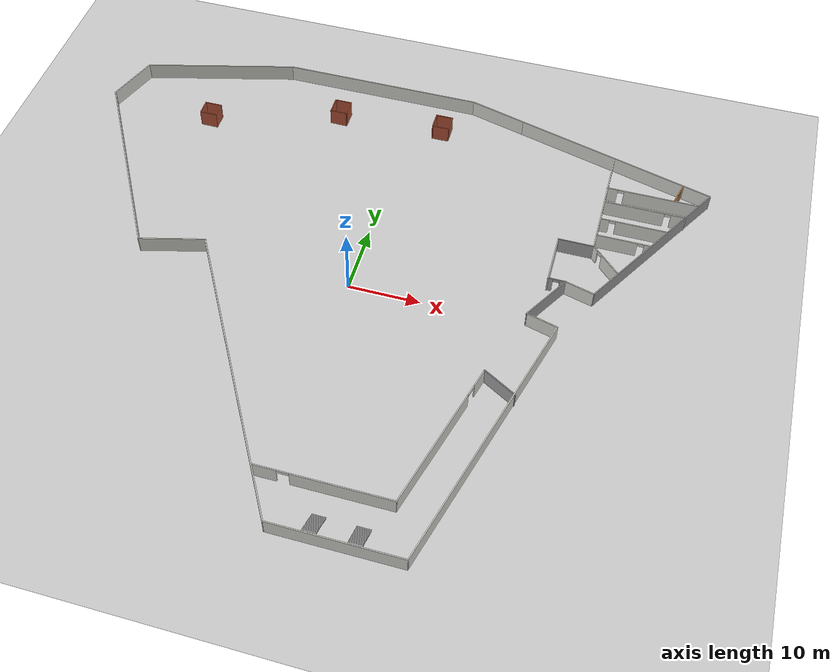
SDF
<sdf version="1.6">
 <world name="default">
  <light name="sun" type="directional">
   <pose>0 0 10 0 -0 0</pose>
   <diffuse>0.8 0.8 0.8 1</diffuse>
   <specular>0.1 0.1 0.1 1</specular>
   <attenuation>
    <range>1000</range>
    <constant>0.9</constant>
    <linear>0.01</linear>
    <quadratic>0.001</quadratic>
   </attenuation>
   <direction>-0.5 0.5 -1</direction>
  </light>
  <model name="ground_plane">
   <static>1</static>
   <link name="link">
    <collision name="collision">
     <geometry><plane><normal>0 0 1</normal><size>100 100</size></plane></geometry>
     <surface><friction><ode><mu>100</mu><mu2>50</mu2></ode></friction></surface>
    </collision>
    <visual name="visual">
     <cast_shadows>0</cast_shadows>
     <geometry><plane><normal>0 0 1</normal><size>100 100</size></plane></geometry>
     <material>
      <script><uri>file://media/materials/scripts/gazebo.material</uri><name>Gazebo/Grey</name></script>
     </material>
    </visual>
   </link>
  </model>
  <gravity>0 0 -9.8</gravity>
  <magnetic_field>6e-06 2.3e-05 -4.2e-05</magnetic_field>
  <atmosphere type="adiabatic"/>
  <physics name="default_physics" default="0" type="ode">
   <max_step_size>0.001</max_step_size>
   <real_time_factor>1</real_time_factor>
   <real_time_update_rate>1000</real_time_update_rate>
  </physics>
  <scene><ambient>0.4 0.4 0.4 1</ambient><background>0.7 0.7 0.7 1</background><shadows>1</shadows></scene>
  <spherical_coordinates>
   <surface_model>EARTH_WGS84</surface_model>
   <latitude_deg>0</latitude_deg>
   <longitude_deg>0</longitude_deg>
   <elevation>0</elevation>
   <heading_deg>0</heading_deg>
  </spherical_coordinates>
  <model name="large_arena_1">
   <pose>0.066745 0.030253 -0.017578 0 -0 0</pose>
   <link name="Stairs_0">
    <visual name="Stairs_0_Visual_0">
     <pose>6.82303 -33.7159 0.083333 0 -0 0</pose>
     <geometry><box><size>1.76476 0.233333 0.166667</size></box></geometry>
     <material>
      <script><uri>file://media/materials/scripts/gazebo.material</uri><name>Gazebo/Grey</name></script>
      <ambient>1 1 1 1</ambient>
     </material>
    </visual>
    <collision name="Stairs_0_Collision_0">
     <geometry><box><size>1.76476 0.233333 0.166667</size></box></geometry>
     <pose>6.82303 -33.7159 0.083333 0 -0 0</pose>
    </collision>
    <visual name="Stairs_0_Visual_1">
     <pose>6.82303 -33.9492 0.25 0 -0 0</pose>
     <geometry><box><size>1.76476 0.233333 0.166667</size></box></geometry>
     <material>
      <script><uri>file://media/materials/scripts/gazebo.material</uri><name>Gazebo/Grey</name></script>
      <ambient>1 1 1 1</ambient>
     </material>
    </visual>
    <collision name="Stairs_0_Collision_1">
     <geometry><box><size>1.76476 0.233333 0.166667</size></box></geometry>
     <pose>6.82303 -33.9492 0.25 0 -0 0</pose>
    </collision>
    <visual name="Stairs_0_Visual_2">
     <pose>6.82303 -34.1826 0.416667 0 -0 0</pose>
     <geometry><box><size>1.76476 0.233333 0.166667</size></box></geometry>
     <material>
      <script><uri>file://media/materials/scripts/gazebo.material</uri><name>Gazebo/Grey</name></script>
      <ambient>1 1 1 1</ambient>
     </material>
    </visual>
    <collision name="Stairs_0_Collision_2">
     <geometry><box><size>1.76476 0.233333 0.166667</size></box></geometry>
     <pose>6.82303 -34.1826 0.416667 0 -0 0</pose>
    </collision>
    <visual name="Stairs_0_Visual_3">
     <pose>6.82303 -34.4159 0.583333 0 -0 0</pose>
     <geometry><box><size>1.76476 0.233333 0.166667</size></box></geometry>
     <material>
      <script><uri>file://media/materials/scripts/gazebo.material</uri><name>Gazebo/Grey</name></script>
      <ambient>1 1 1 1</ambient>
     </material>
    </visual>
    <collision name="Stairs_0_Collision_3">
     <geometry><box><size>1.76476 0.233333 0.166667</size></box></geometry>
     <pose>6.82303 -34.4159 0.583333 0 -0 0</pose>
    </collision>
    <visual name="Stairs_0_Visual_4">
     <pose>6.82303 -34.6492 0.75 0 -0 0</pose>
     <geometry><box><size>1.76476 0.233333 0.166667</size></box></geometry>
     <material>
      <script><uri>file://media/materials/scripts/gazebo.material</uri><name>Gazebo/Grey</name></script>
      <ambient>1 1 1 1</ambient>
     </material>
    </visual>
    <collision name="Stairs_0_Collision_4">
     <geometry><box><size>1.76476 0.233333 0.166667</size></box></geometry>
     <pose>6.82303 -34.6492 0.75 0 -0 0</pose>
    </collision>
    <visual name="Stairs_0_Visual_5">
     <pose>6.82303 -34.8826 0.916667 0 -0 0</pose>
     <geometry><box><size>1.76476 0.233333 0.166667</size></box></geometry>
     <material>
      <script><uri>file://media/materials/scripts/gazebo.material</uri><name>Gazebo/Grey</name></script>
      <ambient>1 1 1 1</ambient>
     </material>
    </visual>
    <collision name="Stairs_0_Collision_5">
     <geometry><box><size>1.76476 0.233333 0.166667</size></box></geometry>
     <pose>6.82303 -34.8826 0.916667 0 -0 0</pose>
    </collision>
    <visual name="Stairs_0_Visual_6">
     <pose>6.82303 -35.1159 1.08333 0 -0 0</pose>
     <geometry><box><size>1.76476 0.233333 0.166667</size></box></geometry>
     <material>
      <script><uri>file://media/materials/scripts/gazebo.material</uri><name>Gazebo/Grey</name></script>
      <ambient>1 1 1 1</ambient>
     </material>
    </visual>
    <collision name="Stairs_0_Collision_6">
     <geometry><box><size>1.76476 0.233333 0.166667</size></box></geometry>
     <pose>6.82303 -35.1159 1.08333 0 -0 0</pose>
    </collision>
    <visual name="Stairs_0_Visual_7">
     <pose>6.82303 -35.3492 1.25 0 -0 0</pose>
     <geometry><box><size>1.76476 0.233333 0.166667</size></box></geometry>
     <material>
      <script><uri>file://media/materials/scripts/gazebo.material</uri><name>Gazebo/Grey</name></script>
      <ambient>1 1 1 1</ambient>
     </material>
    </visual>
    <collision name="Stairs_0_Collision_7">
     <geometry><box><size>1.76476 0.233333 0.166667</size></box></geometry>
     <pose>6.82303 -35.3492 1.25 0 -0 0</pose>
    </collision>
    <visual name="Stairs_0_Visual_8">
     <pose>6.82303 -35.5826 1.41667 0 -0 0</pose>
     <geometry><box><size>1.76476 0.233333 0.166667</size></box></geometry>
     <material>
      <script><uri>file://media/materials/scripts/gazebo.material</uri><name>Gazebo/Grey</name></script>
      <ambient>1 1 1 1</ambient>
     </material>
    </visual>
    <collision name="Stairs_0_Collision_8">
     <geometry><box><size>1.76476 0.233333 0.166667</size></box></geometry>
     <pose>6.82303 -35.5826 1.41667 0 -0 0</pose>
    </collision>
    <visual name="Stairs_0_Visual_9">
     <pose>6.82303 -35.8159 1.58333 0 -0 0</pose>
     <geometry><box><size>1.76476 0.233333 0.166667</size></box></geometry>
     <material>
      <script><uri>file://media/materials/scripts/gazebo.material</uri><name>Gazebo/Grey</name></script>
      <ambient>1 1 1 1</ambient>
     </material>
    </visual>
    <collision name="Stairs_0_Collision_9">
     <geometry><box><size>1.76476 0.233333 0.166667</size></box></geometry>
     <pose>6.82303 -35.8159 1.58333 0 -0 0</pose>
    </collision>
    <visual name="Stairs_0_Visual_10">
     <pose>6.82303 -36.0492 1.75 0 -0 0</pose>
     <geometry><box><size>1.76476 0.233333 0.166667</size></box></geometry>
     <material>
      <script><uri>file://media/materials/scripts/gazebo.material</uri><name>Gazebo/Grey</name></script>
      <ambient>1 1 1 1</ambient>
     </material>
    </visual>
    <collision name="Stairs_0_Collision_10">
     <geometry><box><size>1.76476 0.233333 0.166667</size></box></geometry>
     <pose>6.82303 -36.0492 1.75 0 -0 0</pose>
    </collision>
    <visual name="Stairs_0_Visual_11">
     <pose>6.82303 -36.2826 1.91667 0 -0 0</pose>
     <geometry><box><size>1.76476 0.233333 0.166667</size></box></geometry>
     <material>
      <script><uri>file://media/materials/scripts/gazebo.material</uri><name>Gazebo/Grey</name></script>
      <ambient>1 1 1 1</ambient>
     </material>
    </visual>
    <collision name="Stairs_0_Collision_11">
     <geometry><box><size>1.76476 0.233333 0.166667</size></box></geometry>
     <pose>6.82303 -36.2826 1.91667 0 -0 0</pose>
    </collision>
    <visual name="Stairs_0_Visual_12">
     <pose>6.82303 -36.5159 2.08333 0 -0 0</pose>
     <geometry><box><size>1.76476 0.233333 0.166667</size></box></geometry>
     <material>
      <script><uri>file://media/materials/scripts/gazebo.material</uri><name>Gazebo/Grey</name></script>
      <ambient>1 1 1 1</ambient>
     </material>
    </visual>
    <collision name="Stairs_0_Collision_12">
     <geometry><box><size>1.76476 0.233333 0.166667</size></box></geometry>
     <pose>6.82303 -36.5159 2.08333 0 -0 0</pose>
    </collision>
    <visual name="Stairs_0_Visual_13">
     <pose>6.82303 -36.7492 2.25 0 -0 0</pose>
     <geometry><box><size>1.76476 0.233333 0.166667</size></box></geometry>
     <material>
      <script><uri>file://media/materials/scripts/gazebo.material</uri><name>Gazebo/Grey</name></script>
      <ambient>1 1 1 1</ambient>
     </material>
    </visual>
    <collision name="Stairs_0_Collision_13">
     <geometry><box><size>1.76476 0.233333 0.166667</size></box></geometry>
     <pose>6.82303 -36.7492 2.25 0 -0 0</pose>
    </collision>
    <visual name="Stairs_0_Visual_14">
     <pose>6.82303 -36.9826 2.41667 0 -0 0</pose>
     <geometry><box><size>1.76476 0.233333 0.166667</size></box></geometry>
     <material>
      <script><uri>file://media/materials/scripts/gazebo.material</uri><name>Gazebo/Grey</name></script>
      <ambient>1 1 1 1</ambient>
     </material>
    </visual>
    <collision name="Stairs_0_Collision_14">
     <geometry><box><size>1.76476 0.233333 0.166667</size></box></geometry>
     <pose>6.82303 -36.9826 2.41667 0 -0 0</pose>
    </collision>
   </link>
   <link name="Stairs_4">
    <visual name="Stairs_4_Visual_0">
     <pose>12.3041 -33.7583 0.083333 0 -0 0</pose>
     <geometry><box><size>1.79535 0.233333 0.166667</size></box></geometry>
     <material>
      <script><uri>file://media/materials/scripts/gazebo.material</uri><name>Gazebo/Grey</name></script>
      <ambient>1 1 1 1</ambient>
     </material>
    </visual>
    <collision name="Stairs_4_Collision_0">
     <geometry><box><size>1.79535 0.233333 0.166667</size></box></geometry>
     <pose>12.3041 -33.7583 0.083333 0 -0 0</pose>
    </collision>
    <visual name="Stairs_4_Visual_1">
     <pose>12.3041 -33.9916 0.25 0 -0 0</pose>
     <geometry><box><size>1.79535 0.233333 0.166667</size></box></geometry>
     <material>
      <script><uri>file://media/materials/scripts/gazebo.material</uri><name>Gazebo/Grey</name></script>
      <ambient>1 1 1 1</ambient>
     </material>
    </visual>
    <collision name="Stairs_4_Collision_1">
     <geometry><box><size>1.79535 0.233333 0.166667</size></box></geometry>
     <pose>12.3041 -33.9916 0.25 0 -0 0</pose>
    </collision>
    <visual name="Stairs_4_Visual_2">
     <pose>12.3041 -34.225 0.416667 0 -0 0</pose>
     <geometry><box><size>1.79535 0.233333 0.166667</size></box></geometry>
     <material>
      <script><uri>file://media/materials/scripts/gazebo.material</uri><name>Gazebo/Grey</name></script>
      <ambient>1 1 1 1</ambient>
     </material>
    </visual>
    <collision name="Stairs_4_Collision_2">
     <geometry><box><size>1.79535 0.233333 0.166667</size></box></geometry>
     <pose>12.3041 -34.225 0.416667 0 -0 0</pose>
    </collision>
    <visual name="Stairs_4_Visual_3">
     <pose>12.3041 -34.4583 0.583333 0 -0 0</pose>
     <geometry><box><size>1.79535 0.233333 0.166667</size></box></geometry>
     <material>
      <script><uri>file://media/materials/scripts/gazebo.material</uri><name>Gazebo/Grey</name></script>
      <ambient>1 1 1 1</ambient>
     </material>
    </visual>
    <collision name="Stairs_4_Collision_3">
     <geometry><box><size>1.79535 0.233333 0.166667</size></box></geometry>
     <pose>12.3041 -34.4583 0.583333 0 -0 0</pose>
    </collision>
    <visual name="Stairs_4_Visual_4">
     <pose>12.3041 -34.6916 0.75 0 -0 0</pose>
     <geometry><box><size>1.79535 0.233333 0.166667</size></box></geometry>
     <material>
      <script><uri>file://media/materials/scripts/gazebo.material</uri><name>Gazebo/Grey</name></script>
      <ambient>1 1 1 1</ambient>
     </material>
    </visual>
    <collision name="Stairs_4_Collision_4">
     <geometry><box><size>1.79535 0.233333 0.166667</size></box></geometry>
     <pose>12.3041 -34.6916 0.75 0 -0 0</pose>
    </collision>
    <visual name="Stairs_4_Visual_5">
     <pose>12.3041 -34.925 0.916667 0 -0 0</pose>
     <geometry><box><size>1.79535 0.233333 0.166667</size></box></geometry>
     <material>
      <script><uri>file://media/materials/scripts/gazebo.material</uri><name>Gazebo/Grey</name></script>
      <ambient>1 1 1 1</ambient>
     </material>
    </visual>
    <collision name="Stairs_4_Collision_5">
     <geometry><box><size>1.79535 0.233333 0.166667</size></box></geometry>
     <pose>12.3041 -34.925 0.916667 0 -0 0</pose>
    </collision>
    <visual name="Stairs_4_Visual_6">
     <pose>12.3041 -35.1583 1.08333 0 -0 0</pose>
     <geometry><box><size>1.79535 0.233333 0.166667</size></box></geometry>
     <material>
      <script><uri>file://media/materials/scripts/gazebo.material</uri><name>Gazebo/Grey</name></script>
      <ambient>1 1 1 1</ambient>
     </material>
    </visual>
    <collision name="Stairs_4_Collision_6">
     <geometry><box><size>1.79535 0.233333 0.166667</size></box></geometry>
     <pose>12.3041 -35.1583 1.08333 0 -0 0</pose>
    </collision>
    <visual name="Stairs_4_Visual_7">
     <pose>12.3041 -35.3916 1.25 0 -0 0</pose>
     <geometry><box><size>1.79535 0.233333 0.166667</size></box></geometry>
     <material>
      <script><uri>file://media/materials/scripts/gazebo.material</uri><name>Gazebo/Grey</name></script>
      <ambient>1 1 1 1</ambient>
     </material>
    </visual>
    <collision name="Stairs_4_Collision_7">
     <geometry><box><size>1.79535 0.233333 0.166667</size></box></geometry>
     <pose>12.3041 -35.3916 1.25 0 -0 0</pose>
    </collision>
    <visual name="Stairs_4_Visual_8">
     <pose>12.3041 -35.625 1.41667 0 -0 0</pose>
     <geometry><box><size>1.79535 0.233333 0.166667</size></box></geometry>
     <material>
      <script><uri>file://media/materials/scripts/gazebo.material</uri><name>Gazebo/Grey</name></script>
      <ambient>1 1 1 1</ambient>
     </material>
    </visual>
    <collision name="Stairs_4_Collision_8">
     <geometry><box><size>1.79535 0.233333 0.166667</size></box></geometry>
     <pose>12.3041 -35.625 1.41667 0 -0 0</pose>
    </collision>
    <visual name="Stairs_4_Visual_9">
     <pose>12.3041 -35.8583 1.58333 0 -0 0</pose>
     <geometry><box><size>1.79535 0.233333 0.166667</size></box></geometry>
     <material>
      <script><uri>file://media/materials/scripts/gazebo.material</uri><name>Gazebo/Grey</name></script>
      <ambient>1 1 1 1</ambient>
     </material>
    </visual>
    <collision name="Stairs_4_Collision_9">
     <geometry><box><size>1.79535 0.233333 0.166667</size></box></geometry>
     <pose>12.3041 -35.8583 1.58333 0 -0 0</pose>
    </collision>
    <visual name="Stairs_4_Visual_10">
     <pose>12.3041 -36.0916 1.75 0 -0 0</pose>
     <geometry><box><size>1.79535 0.233333 0.166667</size></box></geometry>
     <material>
      <script><uri>file://media/materials/scripts/gazebo.material</uri><name>Gazebo/Grey</name></script>
      <ambient>1 1 1 1</ambient>
     </material>
    </visual>
    <collision name="Stairs_4_Collision_10">
     <geometry><box><size>1.79535 0.233333 0.166667</size></box></geometry>
     <pose>12.3041 -36.0916 1.75 0 -0 0</pose>
    </collision>
    <visual name="Stairs_4_Visual_11">
     <pose>12.3041 -36.325 1.91667 0 -0 0</pose>
     <geometry><box><size>1.79535 0.233333 0.166667</size></box></geometry>
     <material>
      <script><uri>file://media/materials/scripts/gazebo.material</uri><name>Gazebo/Grey</name></script>
      <ambient>1 1 1 1</ambient>
     </material>
    </visual>
    <collision name="Stairs_4_Collision_11">
     <geometry><box><size>1.79535 0.233333 0.166667</size></box></geometry>
     <pose>12.3041 -36.325 1.91667 0 -0 0</pose>
    </collision>
    <visual name="Stairs_4_Visual_12">
     <pose>12.3041 -36.5583 2.08333 0 -0 0</pose>
     <geometry><box><size>1.79535 0.233333 0.166667</size></box></geometry>
     <material>
      <script><uri>file://media/materials/scripts/gazebo.material</uri><name>Gazebo/Grey</name></script>
      <ambient>1 1 1 1</ambient>
     </material>
    </visual>
    <collision name="Stairs_4_Collision_12">
     <geometry><box><size>1.79535 0.233333 0.166667</size></box></geometry>
     <pose>12.3041 -36.5583 2.08333 0 -0 0</pose>
    </collision>
    <visual name="Stairs_4_Visual_13">
     <pose>12.3041 -36.7916 2.25 0 -0 0</pose>
     <geometry><box><size>1.79535 0.233333 0.166667</size></box></geometry>
     <material>
      <script><uri>file://media/materials/scripts/gazebo.material</uri><name>Gazebo/Grey</name></script>
      <ambient>1 1 1 1</ambient>
     </material>
    </visual>
    <collision name="Stairs_4_Collision_13">
     <geometry><box><size>1.79535 0.233333 0.166667</size></box></geometry>
     <pose>12.3041 -36.7916 2.25 0 -0 0</pose>
    </collision>
    <visual name="Stairs_4_Visual_14">
     <pose>12.3041 -37.025 2.41667 0 -0 0</pose>
     <geometry><box><size>1.79535 0.233333 0.166667</size></box></geometry>
     <material>
      <script><uri>file://media/materials/scripts/gazebo.material</uri><name>Gazebo/Grey</name></script>
      <ambient>1 1 1 1</ambient>
     </material>
    </visual>
    <collision name="Stairs_4_Collision_14">
     <geometry><box><size>1.79535 0.233333 0.166667</size></box></geometry>
     <pose>12.3041 -37.025 2.41667 0 -0 0</pose>
    </collision>
   </link>
   <link name="Wall_1">
    <collision name="Wall_1_Collision">
     <geometry><box><size>22.25 0.15 2.5</size></box></geometry>
     <pose>0 0 1.25 0 -0 0</pose>
    </collision>
    <visual name="Wall_1_Visual">
     <pose>0 0 1.25 0 -0 0</pose>
     <geometry><box><size>22.25 0.15 2.5</size></box></geometry>
     <material>
      <script><uri>file://media/materials/scripts/gazebo.material</uri><name>Gazebo/CeilingTiled</name></script>
      <ambient>1 1 1 1</ambient>
     </material>
    </visual>
    <pose>-31.1574 34.343 0 0 -0 0.261799</pose>
   </link>
   <link name="Wall_10">
    <collision name="Wall_10_Collision">
     <geometry><box><size>17.25 0.15 2.5</size></box></geometry>
     <pose>0 0 1.25 0 -0 0</pose>
    </collision>
    <visual name="Wall_10_Visual">
     <pose>0 0 1.25 0 -0 0</pose>
     <geometry><box><size>17.25 0.15 2.5</size></box></geometry>
     <material>
      <script><uri>file://media/materials/scripts/gazebo.material</uri><name>Gazebo/CeilingTiled</name></script>
      <ambient>1 1 1 1</ambient>
     </material>
    </visual>
    <pose>9.89991 -37.1924 0 0 -0 3.14159</pose>
   </link>
   <link name="Wall_11">
    <collision name="Wall_11_Collision">
     <geometry><box><size>43.75 0.15 2.5</size></box></geometry>
     <pose>0 0 1.25 0 -0 0</pose>
    </collision>
    <visual name="Wall_11_Visual">
     <pose>0 0 1.25 0 -0 0</pose>
     <geometry><box><size>43.75 0.15 2.5</size></box></geometry>
     <material>
      <script><uri>file://media/materials/scripts/gazebo.material</uri><name>Gazebo/CeilingTiled</name></script>
      <ambient>1 1 1 1</ambient>
     </material>
    </visual>
    <pose>-9.5501 -18.313 0 0 -0 2.0944</pose>
   </link>
   <link name="Wall_12">
    <collision name="Wall_12_Collision">
     <geometry><box><size>9.25 0.15 2.5</size></box></geometry>
     <pose>0 0 1.25 0 -0 0</pose>
    </collision>
    <visual name="Wall_12_Visual">
     <pose>0 0 1.25 0 -0 0</pose>
     <geometry><box><size>9.25 0.15 2.5</size></box></geometry>
     <material>
      <script><uri>file://media/materials/scripts/gazebo.material</uri><name>Gazebo/CeilingTiled</name></script>
      <ambient>1 1 1 1</ambient>
     </material>
    </visual>
    <pose>-24.8451 -0.611279 0 0 0 -2.87979</pose>
   </link>
   <link name="Wall_13">
    <collision name="Wall_13_Collision">
     <geometry><box><size>30.25 0.15 2.5</size></box></geometry>
     <pose>0 0 1.25 0 -0 0</pose>
    </collision>
    <visual name="Wall_13_Visual">
     <pose>0 0 1.25 0 -0 0</pose>
     <geometry><box><size>30.25 0.15 2.5</size></box></geometry>
     <material>
      <script><uri>file://media/materials/scripts/gazebo.material</uri><name>Gazebo/CeilingTiled</name></script>
      <ambient>1 1 1 1</ambient>
     </material>
    </visual>
    <pose>-36.765 11.2448 0 0 -0 2.0944</pose>
   </link>
   <link name="Wall_14">
    <collision name="Wall_14_Collision">
     <geometry><box><size>7.76273 0.15 2.5</size></box></geometry>
     <pose>0 0 1.25 0 -0 0</pose>
    </collision>
    <visual name="Wall_14_Visual">
     <pose>0 0 1.25 0 -0 0</pose>
     <geometry><box><size>7.76273 0.15 2.5</size></box></geometry>
     <material>
      <script><uri>file://media/materials/scripts/gazebo.material</uri><name>Gazebo/CeilingTiled</name></script>
      <ambient>1 1 1 1</ambient>
     </material>
    </visual>
    <pose>-43.0604 27.8808 0 0 -0 1.24186</pose>
   </link>
   <link name="Wall_19">
    <collision name="Wall_19_Collision">
     <geometry><box><size>5.25 0.15 2.5</size></box></geometry>
     <pose>0 0 1.25 0 -0 0</pose>
    </collision>
    <visual name="Wall_19_Visual">
     <pose>0 0 1.25 0 -0 0</pose>
     <geometry><box><size>5.25 0.15 2.5</size></box></geometry>
     <material>
      <script><uri>file://media/materials/scripts/gazebo.material</uri><name>Gazebo/Grey</name></script>
      <ambient>1 1 1 1</ambient>
     </material>
    </visual>
    <pose>22.9823 -11.206 0 0 -0 2.61799</pose>
   </link>
   <link name="Wall_2">
    <collision name="Wall_2_Collision">
     <geometry><box><size>28.75 0.15 2.5</size></box></geometry>
     <pose>0 0 1.25 0 -0 0</pose>
    </collision>
    <visual name="Wall_2_Visual">
     <pose>0 0 1.25 0 -0 0</pose>
     <geometry><box><size>28.75 0.15 2.5</size></box></geometry>
     <material>
      <script><uri>file://media/materials/scripts/gazebo.material</uri><name>Gazebo/CeilingTiled</name></script>
      <ambient>1 1 1 1</ambient>
     </material>
    </visual>
    <pose>-6.1839 37.203 0 0 -0 0</pose>
   </link>
   <link name="Wall_20">
    <pose>18.011 -20.2422 0 0 0 -1.8326</pose>
    <visual name="Wall_20_Visual_0">
     <pose>-9.35585 0 1.25 0 -0 0</pose>
     <geometry><box><size>2.78829 0.15 2.5</size></box></geometry>
     <material>
      <script><uri>file://media/materials/scripts/gazebo.material</uri><name>Gazebo/CeilingTiled</name></script>
      <ambient>1 1 1 1</ambient>
     </material>
    </visual>
    <collision name="Wall_20_Collision_0">
     <geometry><box><size>2.78829 0.15 2.5</size></box></geometry>
     <pose>-9.35585 0 1.25 0 -0 0</pose>
    </collision>
    <visual name="Wall_20_Visual_1">
     <pose>2.1828 0 1.25 0 -0 0</pose>
     <geometry><box><size>17.1344 0.15 2.5</size></box></geometry>
     <material>
      <script><uri>file://media/materials/scripts/gazebo.material</uri><name>Gazebo/CeilingTiled</name></script>
      <ambient>1 1 1 1</ambient>
     </material>
    </visual>
    <collision name="Wall_20_Collision_1">
     <geometry><box><size>17.1344 0.15 2.5</size></box></geometry>
     <pose>2.1828 0 1.25 0 -0 0</pose>
    </collision>
    <visual name="Wall_20_Visual_2">
     <pose>-7.17306 0 2.25 0 -0 0</pose>
     <geometry><box><size>1.5773 0.15 0.5</size></box></geometry>
     <material>
      <script><uri>file://media/materials/scripts/gazebo.material</uri><name>Gazebo/CeilingTiled</name></script>
      <ambient>1 1 1 1</ambient>
     </material>
    </visual>
    <collision name="Wall_20_Collision_2">
     <geometry><box><size>1.5773 0.15 0.5</size></box></geometry>
     <pose>-7.17306 0 2.25 0 -0 0</pose>
    </collision>
   </link>
   <link name="Wall_21">
    <pose>6.44812 -30.5535 0 0 -0 3.14159</pose>
    <visual name="Wall_21_Visual_0">
     <pose>-2.31909 0 1.25 0 -0 0</pose>
     <geometry><box><size>13.1118 0.15 2.5</size></box></geometry>
     <material>
      <script><uri>file://media/materials/scripts/gazebo.material</uri><name>Gazebo/CeilingTiled</name></script>
      <ambient>1 1 1 1</ambient>
     </material>
    </visual>
    <collision name="Wall_21_Collision_0">
     <geometry><box><size>13.1118 0.15 2.5</size></box></geometry>
     <pose>-2.31909 0 1.25 0 -0 0</pose>
    </collision>
    <visual name="Wall_21_Visual_1">
     <pose>7.33842 0 1.25 0 -0 0</pose>
     <geometry><box><size>3.07317 0.15 2.5</size></box></geometry>
     <material>
      <script><uri>file://media/materials/scripts/gazebo.material</uri><name>Gazebo/CeilingTiled</name></script>
      <ambient>1 1 1 1</ambient>
     </material>
    </visual>
    <collision name="Wall_21_Collision_1">
     <geometry><box><size>3.07317 0.15 2.5</size></box></geometry>
     <pose>7.33842 0 1.25 0 -0 0</pose>
    </collision>
    <visual name="Wall_21_Visual_2">
     <pose>5.01933 0 2.25 0 -0 0</pose>
     <geometry><box><size>1.565 0.15 0.5</size></box></geometry>
     <material>
      <script><uri>file://media/materials/scripts/gazebo.material</uri><name>Gazebo/CeilingTiled</name></script>
      <ambient>1 1 1 1</ambient>
     </material>
    </visual>
    <collision name="Wall_21_Collision_2">
     <geometry><box><size>1.565 0.15 0.5</size></box></geometry>
     <pose>5.01933 0 2.25 0 -0 0</pose>
    </collision>
   </link>
   <link name="Wall_23">
    <pose>26.6047 6.83411 0 0 -0 3.14159</pose>
    <visual name="Wall_23_Visual_0">
     <pose>-0.81386 0 1.25 0 -0 0</pose>
     <geometry><box><size>0.872281 0.15 2.5</size></box></geometry>
     <material>
      <script><uri>file://media/materials/scripts/gazebo.material</uri><name>Gazebo/Grey</name></script>
      <ambient>1 1 1 1</ambient>
     </material>
    </visual>
    <collision name="Wall_23_Collision_0">
     <geometry><box><size>0.872281 0.15 2.5</size></box></geometry>
     <pose>-0.81386 0 1.25 0 -0 0</pose>
    </collision>
    <visual name="Wall_23_Visual_1">
     <pose>0.88614 0 1.25 0 -0 0</pose>
     <geometry><box><size>0.727719 0.15 2.5</size></box></geometry>
     <material>
      <script><uri>file://media/materials/scripts/gazebo.material</uri><name>Gazebo/Grey</name></script>
      <ambient>1 1 1 1</ambient>
     </material>
    </visual>
    <collision name="Wall_23_Collision_1">
     <geometry><box><size>0.727719 0.15 2.5</size></box></geometry>
     <pose>0.88614 0 1.25 0 -0 0</pose>
    </collision>
    <visual name="Wall_23_Visual_2">
     <pose>0.072281 0 2.25 0 -0 0</pose>
     <geometry><box><size>0.9 0.15 0.5</size></box></geometry>
     <material>
      <script><uri>file://media/materials/scripts/gazebo.material</uri><name>Gazebo/Grey</name></script>
      <ambient>1 1 1 1</ambient>
     </material>
    </visual>
    <collision name="Wall_23_Collision_2">
     <geometry><box><size>0.9 0.15 0.5</size></box></geometry>
     <pose>0.072281 0 2.25 0 -0 0</pose>
    </collision>
   </link>
   <link name="Wall_24">
    <collision name="Wall_24_Collision">
     <geometry><box><size>7.25 0.15 2.5</size></box></geometry>
     <pose>0 0 1.25 0 -0 0</pose>
    </collision>
    <visual name="Wall_24_Visual">
     <pose>0 0 1.25 0 -0 0</pose>
     <geometry><box><size>7.25 0.15 2.5</size></box></geometry>
     <material>
      <script><uri>file://media/materials/scripts/gazebo.material</uri><name>Gazebo/CeilingTiled</name></script>
      <ambient>1 1 1 1</ambient>
     </material>
    </visual>
    <pose>25.4297 10.3841 0 0 -0 1.5708</pose>
   </link>
   <link name="Wall_25">
    <collision name="Wall_25_Collision">
     <geometry><box><size>5 0.15 2.5</size></box></geometry>
     <pose>0 0 1.25 0 -0 0</pose>
    </collision>
    <visual name="Wall_25_Visual">
     <pose>0 0 1.25 0 -0 0</pose>
     <geometry><box><size>5 0.15 2.5</size></box></geometry>
     <material>
      <script><uri>file://media/materials/scripts/gazebo.material</uri><name>Gazebo/Grey</name></script>
      <ambient>1 1 1 1</ambient>
     </material>
    </visual>
    <pose>27.8547 13.9341 0 0 -0 0</pose>
   </link>
   <link name="Wall_26">
    <collision name="Wall_26_Collision">
     <geometry><box><size>17.5 0.15 2.5</size></box></geometry>
     <pose>0 0 1.25 0 -0 0</pose>
    </collision>
    <visual name="Wall_26_Visual">
     <pose>0 0 1.25 0 -0 0</pose>
     <geometry><box><size>17.5 0.15 2.5</size></box></geometry>
     <material>
      <script><uri>file://media/materials/scripts/gazebo.material</uri><name>Gazebo/CeilingTiled</name></script>
      <ambient>1 1 1 1</ambient>
     </material>
    </visual>
    <pose>30.2797 22.6091 0 0 -0 1.5708</pose>
   </link>
   <link name="Wall_28">
    <pose>35.9707 22.5462 0 0 -0 0</pose>
    <visual name="Wall_28_Visual_0">
     <pose>-1.48838 0 1.25 0 -0 0</pose>
     <geometry><box><size>8.27325 0.15 2.5</size></box></geometry>
     <material>
      <script><uri>file://media/materials/scripts/gazebo.material</uri><name>Gazebo/CeilingTiled</name></script>
      <ambient>1 1 1 1</ambient>
     </material>
    </visual>
    <collision name="Wall_28_Collision_0">
     <geometry><box><size>8.27325 0.15 2.5</size></box></geometry>
     <pose>-1.48838 0 1.25 0 -0 0</pose>
    </collision>
    <visual name="Wall_28_Visual_1">
     <pose>4.58662 0 1.25 0 -0 0</pose>
     <geometry><box><size>2.07675 0.15 2.5</size></box></geometry>
     <material>
      <script><uri>file://media/materials/scripts/gazebo.material</uri><name>Gazebo/CeilingTiled</name></script>
      <ambient>1 1 1 1</ambient>
     </material>
    </visual>
    <collision name="Wall_28_Collision_1">
     <geometry><box><size>2.07675 0.15 2.5</size></box></geometry>
     <pose>4.58662 0 1.25 0 -0 0</pose>
    </collision>
    <visual name="Wall_28_Visual_2">
     <pose>3.09825 0 2.25 0 -0 0</pose>
     <geometry><box><size>0.9 0.15 0.5</size></box></geometry>
     <material>
      <script><uri>file://media/materials/scripts/gazebo.material</uri><name>Gazebo/CeilingTiled</name></script>
      <ambient>1 1 1 1</ambient>
     </material>
    </visual>
    <collision name="Wall_28_Collision_2">
     <geometry><box><size>0.9 0.15 0.5</size></box></geometry>
     <pose>3.09825 0 2.25 0 -0 0</pose>
    </collision>
   </link>
   <link name="Wall_3">
    <collision name="Wall_3_Collision">
     <geometry><box><size>8.5 0.15 2.5</size></box></geometry>
     <pose>0 0 1.25 0 -0 0</pose>
    </collision>
    <visual name="Wall_3_Visual">
     <pose>0 0 1.25 0 -0 0</pose>
     <geometry><box><size>8.5 0.15 2.5</size></box></geometry>
     <material>
      <script><uri>file://media/materials/scripts/gazebo.material</uri><name>Gazebo/CeilingTiled</name></script>
      <ambient>1 1 1 1</ambient>
     </material>
    </visual>
    <pose>12.1488 36.1224 0 0 0 -0.261799</pose>
   </link>
   <link name="Wall_30">
    <pose>32.1712 12.0426 0 0 0 -0.785398</pose>
    <visual name="Wall_30_Visual_0">
     <pose>-2.23694 0 1.25 0 -0 0</pose>
     <geometry><box><size>1.02612 0.15 2.5</size></box></geometry>
     <material>
      <script><uri>file://media/materials/scripts/gazebo.material</uri><name>Gazebo/CeilingTiled</name></script>
      <ambient>1 1 1 1</ambient>
     </material>
    </visual>
    <collision name="Wall_30_Collision_0">
     <geometry><box><size>1.02612 0.15 2.5</size></box></geometry>
     <pose>-2.23694 0 1.25 0 -0 0</pose>
    </collision>
    <visual name="Wall_30_Visual_1">
     <pose>0.963063 0 1.25 0 -0 0</pose>
     <geometry><box><size>3.57388 0.15 2.5</size></box></geometry>
     <material>
      <script><uri>file://media/materials/scripts/gazebo.material</uri><name>Gazebo/CeilingTiled</name></script>
      <ambient>1 1 1 1</ambient>
     </material>
    </visual>
    <collision name="Wall_30_Collision_1">
     <geometry><box><size>3.57388 0.15 2.5</size></box></geometry>
     <pose>0.963063 0 1.25 0 -0 0</pose>
    </collision>
    <visual name="Wall_30_Visual_2">
     <pose>-1.27388 0 2.25 0 -0 0</pose>
     <geometry><box><size>0.9 0.15 0.5</size></box></geometry>
     <material>
      <script><uri>file://media/materials/scripts/gazebo.material</uri><name>Gazebo/CeilingTiled</name></script>
      <ambient>1 1 1 1</ambient>
     </material>
    </visual>
    <collision name="Wall_30_Collision_2">
     <geometry><box><size>0.9 0.15 0.5</size></box></geometry>
     <pose>-1.27388 0 2.25 0 -0 0</pose>
    </collision>
   </link>
   <link name="Wall_32">
    <pose>33.9594 16.0979 0 0 -0 3.14159</pose>
    <visual name="Wall_32_Visual_0">
     <pose>-3.27849 0 1.25 0 -0 0</pose>
     <geometry><box><size>0.943009 0.15 2.5</size></box></geometry>
     <material>
      <script><uri>file://media/materials/scripts/gazebo.material</uri><name>Gazebo/CeilingTiled</name></script>
      <ambient>1 1 1 1</ambient>
     </material>
    </visual>
    <collision name="Wall_32_Collision_0">
     <geometry><box><size>0.943009 0.15 2.5</size></box></geometry>
     <pose>-3.27849 0 1.25 0 -0 0</pose>
    </collision>
    <visual name="Wall_32_Visual_1">
     <pose>0.921505 0 1.25 0 -0 0</pose>
     <geometry><box><size>5.65699 0.15 2.5</size></box></geometry>
     <material>
      <script><uri>file://media/materials/scripts/gazebo.material</uri><name>Gazebo/CeilingTiled</name></script>
      <ambient>1 1 1 1</ambient>
     </material>
    </visual>
    <collision name="Wall_32_Collision_1">
     <geometry><box><size>5.65699 0.15 2.5</size></box></geometry>
     <pose>0.921505 0 1.25 0 -0 0</pose>
    </collision>
    <visual name="Wall_32_Visual_2">
     <pose>-2.35699 0 2.25 0 -0 0</pose>
     <geometry><box><size>0.9 0.15 0.5</size></box></geometry>
     <material>
      <script><uri>file://media/materials/scripts/gazebo.material</uri><name>Gazebo/CeilingTiled</name></script>
      <ambient>1 1 1 1</ambient>
     </material>
    </visual>
    <collision name="Wall_32_Collision_2">
     <geometry><box><size>0.9 0.15 0.5</size></box></geometry>
     <pose>-2.35699 0 2.25 0 -0 0</pose>
    </collision>
   </link>
   <link name="Wall_34">
    <pose>34.918 19.2275 0 0 -0 0</pose>
    <visual name="Wall_34_Visual_0">
     <pose>-4.01256 0 1.25 0 -0 0</pose>
     <geometry><box><size>1.22489 0.15 2.5</size></box></geometry>
     <material>
      <script><uri>file://media/materials/scripts/gazebo.material</uri><name>Gazebo/CeilingTiled</name></script>
      <ambient>1 1 1 1</ambient>
     </material>
    </visual>
    <collision name="Wall_34_Collision_0">
     <geometry><box><size>1.22489 0.15 2.5</size></box></geometry>
     <pose>-4.01256 0 1.25 0 -0 0</pose>
    </collision>
    <visual name="Wall_34_Visual_1">
     <pose>1.06244 0 1.25 0 -0 0</pose>
     <geometry><box><size>7.12512 0.15 2.5</size></box></geometry>
     <material>
      <script><uri>file://media/materials/scripts/gazebo.material</uri><name>Gazebo/CeilingTiled</name></script>
      <ambient>1 1 1 1</ambient>
     </material>
    </visual>
    <collision name="Wall_34_Collision_1">
     <geometry><box><size>7.12512 0.15 2.5</size></box></geometry>
     <pose>1.06244 0 1.25 0 -0 0</pose>
    </collision>
    <visual name="Wall_34_Visual_2">
     <pose>-2.95011 0 2.25 0 -0 0</pose>
     <geometry><box><size>0.9 0.15 0.5</size></box></geometry>
     <material>
      <script><uri>file://media/materials/scripts/gazebo.material</uri><name>Gazebo/CeilingTiled</name></script>
      <ambient>1 1 1 1</ambient>
     </material>
    </visual>
    <collision name="Wall_34_Collision_2">
     <geometry><box><size>0.9 0.15 0.5</size></box></geometry>
     <pose>-2.95011 0 2.25 0 -0 0</pose>
    </collision>
   </link>
   <link name="Wall_36">
    <pose>36.5592 25.2497 0 0 -0 0</pose>
    <visual name="Wall_36_Visual_0">
     <pose>-5.6107 0 1.25 0 -0 0</pose>
     <geometry><box><size>1.5286 0.15 2.5</size></box></geometry>
     <material>
      <script><uri>file://media/materials/scripts/gazebo.material</uri><name>Gazebo/CeilingTiled</name></script>
      <ambient>1 1 1 1</ambient>
     </material>
    </visual>
    <collision name="Wall_36_Collision_0">
     <geometry><box><size>1.5286 0.15 2.5</size></box></geometry>
     <pose>-5.6107 0 1.25 0 -0 0</pose>
    </collision>
    <visual name="Wall_36_Visual_1">
     <pose>1.2143 0 1.25 0 -0 0</pose>
     <geometry><box><size>10.3214 0.15 2.5</size></box></geometry>
     <material>
      <script><uri>file://media/materials/scripts/gazebo.material</uri><name>Gazebo/CeilingTiled</name></script>
      <ambient>1 1 1 1</ambient>
     </material>
    </visual>
    <collision name="Wall_36_Collision_1">
     <geometry><box><size>10.3214 0.15 2.5</size></box></geometry>
     <pose>1.2143 0 1.25 0 -0 0</pose>
    </collision>
    <visual name="Wall_36_Visual_2">
     <pose>-4.3964 0 2.25 0 -0 0</pose>
     <geometry><box><size>0.9 0.15 0.5</size></box></geometry>
     <material>
      <script><uri>file://media/materials/scripts/gazebo.material</uri><name>Gazebo/CeilingTiled</name></script>
      <ambient>1 1 1 1</ambient>
     </material>
    </visual>
    <collision name="Wall_36_Collision_2">
     <geometry><box><size>0.9 0.15 0.5</size></box></geometry>
     <pose>-4.3964 0 2.25 0 -0 0</pose>
    </collision>
   </link>
   <link name="Wall_38">
    <pose>40.0557 26.9746 0 0 -0 1.309</pose>
    <visual name="Wall_38_Visual_0">
     <pose>-1.04878 0 1.25 0 -0 0</pose>
     <geometry><box><size>1.40244 0.15 2.5</size></box></geometry>
     <material>
      <script><uri>file://media/materials/scripts/gazebo.material</uri><name>Gazebo/Wood</name></script>
      <ambient>1 1 1 1</ambient>
     </material>
    </visual>
    <collision name="Wall_38_Collision_0">
     <geometry><box><size>1.40244 0.15 2.5</size></box></geometry>
     <pose>-1.04878 0 1.25 0 -0 0</pose>
    </collision>
    <visual name="Wall_38_Visual_1">
     <pose>1.15122 0 1.25 0 -0 0</pose>
     <geometry><box><size>1.19756 0.15 2.5</size></box></geometry>
     <material>
      <script><uri>file://media/materials/scripts/gazebo.material</uri><name>Gazebo/Wood</name></script>
      <ambient>1 1 1 1</ambient>
     </material>
    </visual>
    <collision name="Wall_38_Collision_1">
     <geometry><box><size>1.19756 0.15 2.5</size></box></geometry>
     <pose>1.15122 0 1.25 0 -0 0</pose>
    </collision>
    <visual name="Wall_38_Visual_2">
     <pose>0.10244 0 2.25 0 -0 0</pose>
     <geometry><box><size>0.9 0.15 0.5</size></box></geometry>
     <material>
      <script><uri>file://media/materials/scripts/gazebo.material</uri><name>Gazebo/Wood</name></script>
      <ambient>1 1 1 1</ambient>
     </material>
    </visual>
    <collision name="Wall_38_Collision_2">
     <geometry><box><size>0.9 0.15 0.5</size></box></geometry>
     <pose>0.10244 0 2.25 0 -0 0</pose>
    </collision>
   </link>
   <link name="Wall_4">
    <collision name="Wall_4_Collision">
     <geometry><box><size>29.25 0.15 2.5</size></box></geometry>
     <pose>0 0 1.25 0 -0 0</pose>
    </collision>
    <visual name="Wall_4_Visual">
     <pose>0 0 1.25 0 -0 0</pose>
     <geometry><box><size>29.25 0.15 2.5</size></box></geometry>
     <material>
      <script><uri>file://media/materials/scripts/gazebo.material</uri><name>Gazebo/CeilingTiled</name></script>
      <ambient>1 1 1 1</ambient>
     </material>
    </visual>
    <pose>30.2358 31.276 0 0 0 -0.261799</pose>
   </link>
   <link name="Wall_40">
    <collision name="Wall_40_Collision">
     <geometry><box><size>2.5 0.15 2.5</size></box></geometry>
     <pose>0 0 1.25 0 -0 0</pose>
    </collision>
    <visual name="Wall_40_Visual">
     <pose>0 0 1.25 0 -0 0</pose>
     <geometry><box><size>2.5 0.15 2.5</size></box></geometry>
     <material>
      <script><uri>file://media/materials/scripts/gazebo.material</uri><name>Gazebo/Bricks</name></script>
      <ambient>1 1 1 1</ambient>
     </material>
    </visual>
    <pose>-29.1544 23.9042 0 0 -0 0</pose>
   </link>
   <link name="Wall_41">
    <collision name="Wall_41_Collision">
     <geometry><box><size>2.25551 0.15 2.5</size></box></geometry>
     <pose>0 0 1.25 0 -0 0</pose>
    </collision>
    <visual name="Wall_41_Visual">
     <pose>0 0 1.25 0 -0 0</pose>
     <geometry><box><size>2.25551 0.15 2.5</size></box></geometry>
     <material>
      <script><uri>file://media/materials/scripts/gazebo.material</uri><name>Gazebo/Bricks</name></script>
      <ambient>1 1 1 1</ambient>
     </material>
    </visual>
    <pose>-27.9794 24.957 0 0 -0 1.5708</pose>
   </link>
   <link name="Wall_42">
    <collision name="Wall_42_Collision">
     <geometry><box><size>2.5 0.15 2.5</size></box></geometry>
     <pose>0 0 1.25 0 -0 0</pose>
    </collision>
    <visual name="Wall_42_Visual">
     <pose>0 0 1.25 0 -0 0</pose>
     <geometry><box><size>2.5 0.15 2.5</size></box></geometry>
     <material>
      <script><uri>file://media/materials/scripts/gazebo.material</uri><name>Gazebo/Bricks</name></script>
      <ambient>1 1 1 1</ambient>
     </material>
    </visual>
    <pose>-29.1544 25.9982 0 0 -0 3.14159</pose>
   </link>
   <link name="Wall_43">
    <collision name="Wall_43_Collision">
     <geometry><box><size>2.25551 0.15 2.5</size></box></geometry>
     <pose>0 0 1.25 0 -0 0</pose>
    </collision>
    <visual name="Wall_43_Visual">
     <pose>0 0 1.25 0 -0 0</pose>
     <geometry><box><size>2.25551 0.15 2.5</size></box></geometry>
     <material>
      <script><uri>file://media/materials/scripts/gazebo.material</uri><name>Gazebo/Bricks</name></script>
      <ambient>1 1 1 1</ambient>
     </material>
    </visual>
    <pose>-30.3294 24.957 0 0 0 -1.5708</pose>
   </link>
   <link name="Wall_45">
    <collision name="Wall_45_Collision">
     <geometry><box><size>2.5 0.15 2.5</size></box></geometry>
     <pose>0 0 1.25 0 -0 0</pose>
    </collision>
    <visual name="Wall_45_Visual">
     <pose>0 0 1.25 0 -0 0</pose>
     <geometry><box><size>2.5 0.15 2.5</size></box></geometry>
     <material>
      <script><uri>file://media/materials/scripts/gazebo.material</uri><name>Gazebo/Bricks</name></script>
      <ambient>1 1 1 1</ambient>
     </material>
    </visual>
    <pose>-10.6572 29.5511 0 0 -0 0</pose>
   </link>
   <link name="Wall_46">
    <collision name="Wall_46_Collision">
     <geometry><box><size>2.52011 0.15 2.5</size></box></geometry>
     <pose>0 0 1.25 0 -0 0</pose>
    </collision>
    <visual name="Wall_46_Visual">
     <pose>0 0 1.25 0 -0 0</pose>
     <geometry><box><size>2.52011 0.15 2.5</size></box></geometry>
     <material>
      <script><uri>file://media/materials/scripts/gazebo.material</uri><name>Gazebo/Bricks</name></script>
      <ambient>1 1 1 1</ambient>
     </material>
    </visual>
    <pose>-9.48222 30.716 0 0 -0 1.5708</pose>
   </link>
   <link name="Wall_47">
    <collision name="Wall_47_Collision">
     <geometry><box><size>2.5 0.15 2.5</size></box></geometry>
     <pose>0 0 1.25 0 -0 0</pose>
    </collision>
    <visual name="Wall_47_Visual">
     <pose>0 0 1.25 0 -0 0</pose>
     <geometry><box><size>2.5 0.15 2.5</size></box></geometry>
     <material>
      <script><uri>file://media/materials/scripts/gazebo.material</uri><name>Gazebo/Bricks</name></script>
      <ambient>1 1 1 1</ambient>
     </material>
    </visual>
    <pose>-10.6572 31.9212 0 0 -0 3.14159</pose>
   </link>
   <link name="Wall_48">
    <collision name="Wall_48_Collision">
     <geometry><box><size>2.5 0.15 2.5</size></box></geometry>
     <pose>0 0 1.25 0 -0 0</pose>
    </collision>
    <visual name="Wall_48_Visual">
     <pose>0 0 1.25 0 -0 0</pose>
     <geometry><box><size>2.5 0.15 2.5</size></box></geometry>
     <material>
      <script><uri>file://media/materials/scripts/gazebo.material</uri><name>Gazebo/Bricks</name></script>
      <ambient>1 1 1 1</ambient>
     </material>
    </visual>
    <pose>-11.8322 30.7462 0 0 0 -1.5708</pose>
   </link>
   <link name="Wall_5">
    <collision name="Wall_5_Collision">
     <geometry><box><size>25.25 0.15 2.5</size></box></geometry>
     <pose>0 0 1.25 0 -0 0</pose>
    </collision>
    <visual name="Wall_5_Visual">
     <pose>0 0 1.25 0 -0 0</pose>
     <geometry><box><size>25.25 0.15 2.5</size></box></geometry>
     <material>
      <script><uri>file://media/materials/scripts/gazebo.material</uri><name>Gazebo/Grey</name></script>
      <ambient>1 1 1 1</ambient>
     </material>
    </visual>
    <pose>38.015 16.6416 0 0 0 -2.0944</pose>
   </link>
   <link name="Wall_50">
    <collision name="Wall_50_Collision">
     <geometry><box><size>2.5 0.15 2.5</size></box></geometry>
     <pose>0 0 1.25 0 -0 0</pose>
    </collision>
    <visual name="Wall_50_Visual">
     <pose>0 0 1.25 0 -0 0</pose>
     <geometry><box><size>2.5 0.15 2.5</size></box></geometry>
     <material>
      <script><uri>file://media/materials/scripts/gazebo.material</uri><name>Gazebo/Bricks</name></script>
      <ambient>1 1 1 1</ambient>
     </material>
    </visual>
    <pose>4.69661 30.5698 0 0 -0 0.00851</pose>
   </link>
   <link name="Wall_55">
    <collision name="Wall_55_Collision">
     <geometry><box><size>2.5 0.15 2.5</size></box></geometry>
     <pose>0 0 1.25 0 -0 0</pose>
    </collision>
    <visual name="Wall_55_Visual">
     <pose>0 0 1.25 0 -0 0</pose>
     <geometry><box><size>2.5 0.15 2.5</size></box></geometry>
     <material>
      <script><uri>file://media/materials/scripts/gazebo.material</uri><name>Gazebo/Bricks</name></script>
      <ambient>1 1 1 1</ambient>
     </material>
    </visual>
    <pose>3.52161 31.7348 0 0 -0 1.5708</pose>
   </link>
   <link name="Wall_56">
    <collision name="Wall_56_Collision">
     <geometry><box><size>2.5 0.15 2.5</size></box></geometry>
     <pose>0 0 1.25 0 -0 0</pose>
    </collision>
    <visual name="Wall_56_Visual">
     <pose>0 0 1.25 0 -0 0</pose>
     <geometry><box><size>2.5 0.15 2.5</size></box></geometry>
     <material>
      <script><uri>file://media/materials/scripts/gazebo.material</uri><name>Gazebo/Bricks</name></script>
      <ambient>1 1 1 1</ambient>
     </material>
    </visual>
    <pose>4.69661 32.9098 0 0 -0 0</pose>
   </link>
   <link name="Wall_57">
    <collision name="Wall_57_Collision">
     <geometry><box><size>2.48 0.15 2.5</size></box></geometry>
     <pose>0 0 1.25 0 -0 0</pose>
    </collision>
    <visual name="Wall_57_Visual">
     <pose>0 0 1.25 0 -0 0</pose>
     <geometry><box><size>2.48 0.15 2.5</size></box></geometry>
     <material>
      <script><uri>file://media/materials/scripts/gazebo.material</uri><name>Gazebo/Bricks</name></script>
      <ambient>1 1 1 1</ambient>
     </material>
    </visual>
    <pose>5.87161 31.7448 0 0 0 -1.5708</pose>
   </link>
   <link name="Wall_6">
    <collision name="Wall_6_Collision">
     <geometry><box><size>4.25 0.15 2.5</size></box></geometry>
     <pose>0 0 1.25 0 -0 0</pose>
    </collision>
    <visual name="Wall_6_Visual">
     <pose>0 0 1.25 0 -0 0</pose>
     <geometry><box><size>4.25 0.15 2.5</size></box></geometry>
     <material>
      <script><uri>file://media/materials/scripts/gazebo.material</uri><name>Gazebo/CeilingTiled</name></script>
      <ambient>1 1 1 1</ambient>
     </material>
    </visual>
    <pose>29.7599 6.30353 0 0 -0 2.87979</pose>
   </link>
   <link name="Wall_7">
    <collision name="Wall_7_Collision">
     <geometry><box><size>7.75 0.15 2.5</size></box></geometry>
     <pose>0 0 1.25 0 -0 0</pose>
    </collision>
    <visual name="Wall_7_Visual">
     <pose>0 0 1.25 0 -0 0</pose>
     <geometry><box><size>7.75 0.15 2.5</size></box></geometry>
     <material>
      <script><uri>file://media/materials/scripts/gazebo.material</uri><name>Gazebo/Grey</name></script>
      <ambient>1 1 1 1</ambient>
     </material>
    </visual>
    <pose>25.8797 3.54321 0 0 0 -2.0944</pose>
   </link>
   <link name="Wall_8">
    <collision name="Wall_8_Collision">
     <geometry><box><size>4.5 0.15 2.5</size></box></geometry>
     <pose>0 0 1.25 0 -0 0</pose>
    </collision>
    <visual name="Wall_8_Visual">
     <pose>0 0 1.25 0 -0 0</pose>
     <geometry><box><size>4.5 0.15 2.5</size></box></geometry>
     <material>
      <script><uri>file://media/materials/scripts/gazebo.material</uri><name>Gazebo/CeilingTiled</name></script>
      <ambient>1 1 1 1</ambient>
     </material>
    </visual>
    <pose>26.0806 -0.310617 0 0 0 -0.261799</pose>
   </link>
   <link name="Wall_9">
    <collision name="Wall_9_Collision">
     <geometry><box><size>37.75 0.15 2.5</size></box></geometry>
     <pose>0 0 1.25 0 -0 0</pose>
    </collision>
    <visual name="Wall_9_Visual">
     <pose>0 0 1.25 0 -0 0</pose>
     <geometry><box><size>37.75 0.15 2.5</size></box></geometry>
     <material>
      <script><uri>file://media/materials/scripts/gazebo.material</uri><name>Gazebo/CeilingTiled</name></script>
      <ambient>1 1 1 1</ambient>
     </material>
    </visual>
    <pose>23.3157 -19.033 0 0 0 -1.8326</pose>
   </link>
   <static>1</static>
  </model>
 </world>
</sdf>
